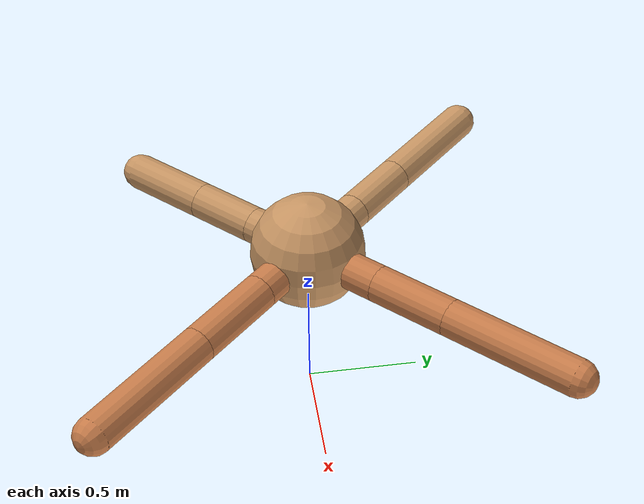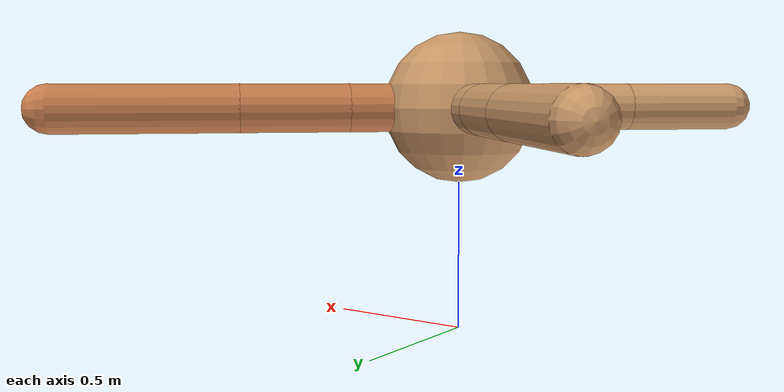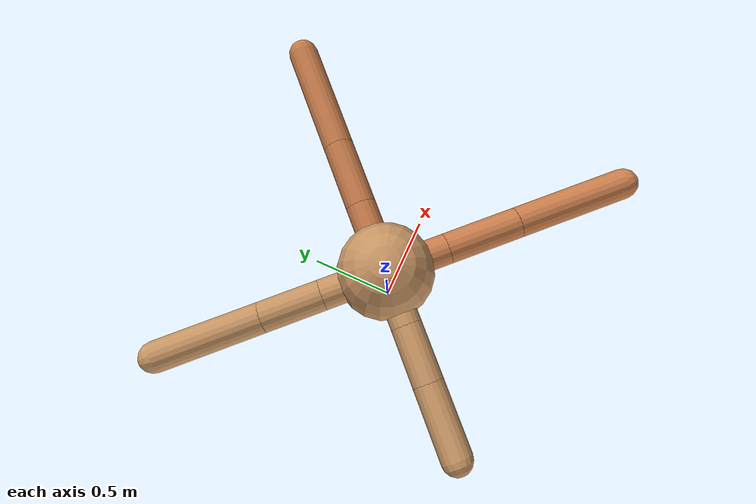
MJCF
<mujoco model="ant">
  <compiler angle="degree" coordinate="local" inertiafromgeom="true" />
  <option integrator="RK4" timestep="0.01" />
  <custom>
    <numeric data="0.0 0.0 0.55 1.0 0.0 0.0 0.0 0.0 1.0 0.0 -1.0 0.0 -1.0 0.0 1.0" name="init_qpos" />
  </custom>
  <default>
    <joint armature="1" damping="1" limited="true" />
    <geom conaffinity="0" condim="3" density="5.0" friction="1.5 0.1 0.1" margin="0.01" rgba="0.8 0.6 0.4 1" />
  </default>
  <worldbody>
    <body name="torso" pos="0 0 0.75">
      <geom name="torso_geom" pos="0 0 0" size="0.25" type="sphere" />

      <body name="front_left_leg" pos="0 0 0">
        <geom fromto="0.0 0.0 0.0 0.26163490616549107 0.26163490616549107 0.0" name="aux_1_geom" size="0.08" type="capsule" rgba=".8 .5 .3 1" />
        <body name="aux_1" pos="0.26163490616549107 0.26163490616549107 0.0">
          <joint axis="0 0 1" name="hip_1" pos="0.0 0.0 0.0" range="-40 40" type="hinge" />
          <geom fromto="0.0 0.0 0.0 0.24941037704410007 0.24941037704410007 0.0" name="left_leg_geom" size="0.08" type="capsule" rgba=".8 .5 .3 1" />
          <body pos="0.24941037704410007 0.24941037704410007 0.0" name="front_left_foot">
            <joint axis="-1 1 0" name="ankle_1" pos="0.0 0.0 0.0" range="30 100" type="hinge" />
            <geom fromto="0.0 0.0 0.0 0.41643691403840094 0.41643691403840094 0.0" name="left_ankle_geom" size="0.08" type="capsule" rgba=".8 .5 .3 1" />
          </body>
        </body>
      </body>
      <body name="front_right_leg" pos="0 0 0">
        <geom fromto="0.0 0.0 0.0 -0.24041824041147192 0.24041824041147192 0.0" name="aux_2_geom" size="0.08" type="capsule" />
        <body name="aux_2" pos="-0.24041824041147192 0.24041824041147192 0.0">
          <joint axis="0 0 1" name="hip_2" pos="0.0 0.0 0.0" range="-40 40" type="hinge" />
          <geom fromto="0.0 0.0 0.0 -0.22360827170712377 0.22360827170712377 0.0" name="right_leg_geom" size="0.08" type="capsule" />
          <body pos="-0.22360827170712377 0.22360827170712377 0.0" name="front_right_foot">
            <joint axis="1 1 0" name="ankle_2" pos="0.0 0.0 0.0" range="-100 -30" type="hinge" />
            <geom fromto="0.0 0.0 0.0 -0.38472540632592755 0.38472540632592755 0.0" name="right_ankle_geom" size="0.08" type="capsule" />
          </body>
        </body>
      </body>
      <body name="left_back_leg" pos="0 0 0">
        <geom fromto="0.0 0.0 0.0 -0.20672263270955168 -0.20672263270955168 0.0" name="aux_3_geom" size="0.08" type="capsule" />
        <body name="aux_3" pos="-0.20672263270955168 -0.20672263270955168 0.0">
          <joint axis="0 0 1" name="hip_3" pos="0.0 0.0 0.0" range="-40 40" type="hinge" />
          <geom fromto="0.0 0.0 0.0 -0.2086131502142358 -0.2086131502142358 0.0" name="back_leg_geom" size="0.08" type="capsule" />
          <body pos="-0.2086131502142358 -0.2086131502142358 0.0" name="left_back_foot">
            <joint axis="-1 1 0" name="ankle_3" pos="0.0 0.0 0.0" range="-100 -30" type="hinge" />
            <geom fromto="0.0 0.0 0.0 -0.2617495515952332 -0.2617495515952332 0.0" name="third_ankle_geom" size="0.08" type="capsule" />
          </body>
        </body>
      </body>
      <body name="right_back_leg" pos="0 0 0">
        <geom fromto="0.0 0.0 0.0 0.23601008658546305 -0.23601008658546305 0.0" name="aux_4_geom" size="0.08" type="capsule" rgba=".8 .5 .3 1" />
        <body name="aux_4" pos="0.23601008658546305 -0.23601008658546305 0.0">
          <joint axis="0 0 1" name="hip_4" pos="0.0 0.0 0.0" range="-40 40" type="hinge" />
          <geom fromto="0.0 0.0 0.0 0.27670250227024845 -0.27670250227024845 0.0" name="rightback_leg_geom" size="0.08" type="capsule" rgba=".8 .5 .3 1" />
          <body pos="0.27670250227024845 -0.27670250227024845 0.0" name="right_back_foot">
            <joint axis="1 1 0" name="ankle_4" pos="0.0 0.0 0.0" range="30 100" type="hinge" />
            <geom fromto="0.0 0.0 0.0 0.42468313225133436 -0.42468313225133436 0.0" name="fourth_ankle_geom" size="0.08" type="capsule" rgba=".8 .5 .3 1" />
          </body>
        </body>
      </body>
    </body>
  </worldbody>
  <actuator>
    <motor ctrllimited="true" ctrlrange="-1.0 1.0" joint="hip_4" gear="150" />
    <motor ctrllimited="true" ctrlrange="-1.0 1.0" joint="ankle_4" gear="150" />
    <motor ctrllimited="true" ctrlrange="-1.0 1.0" joint="hip_1" gear="150" />
    <motor ctrllimited="true" ctrlrange="-1.0 1.0" joint="ankle_1" gear="150" />
    <motor ctrllimited="true" ctrlrange="-1.0 1.0" joint="hip_2" gear="150" />
    <motor ctrllimited="true" ctrlrange="-1.0 1.0" joint="ankle_2" gear="150" />
    <motor ctrllimited="true" ctrlrange="-1.0 1.0" joint="hip_3" gear="150" />
    <motor ctrllimited="true" ctrlrange="-1.0 1.0" joint="ankle_3" gear="150" />
  </actuator>
</mujoco>
